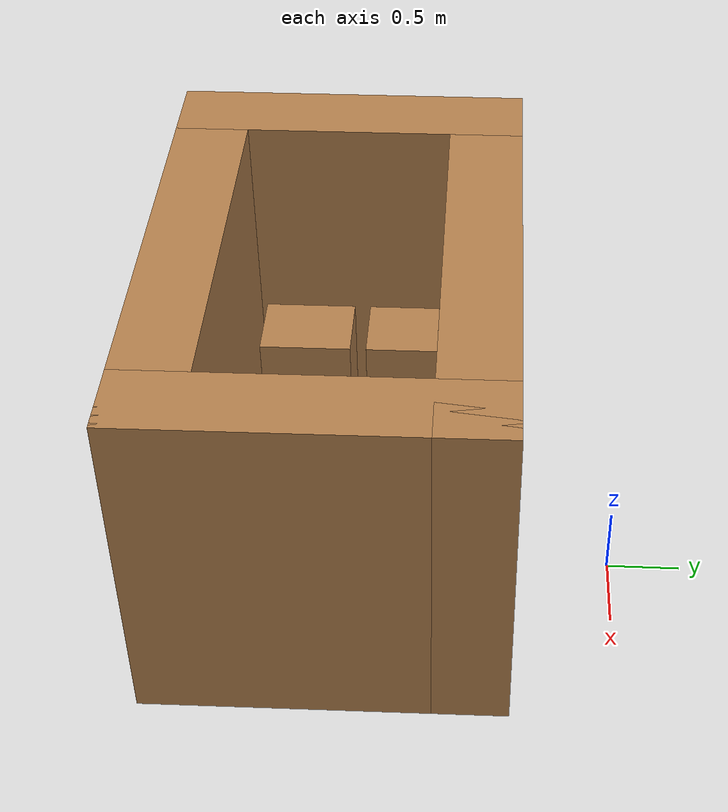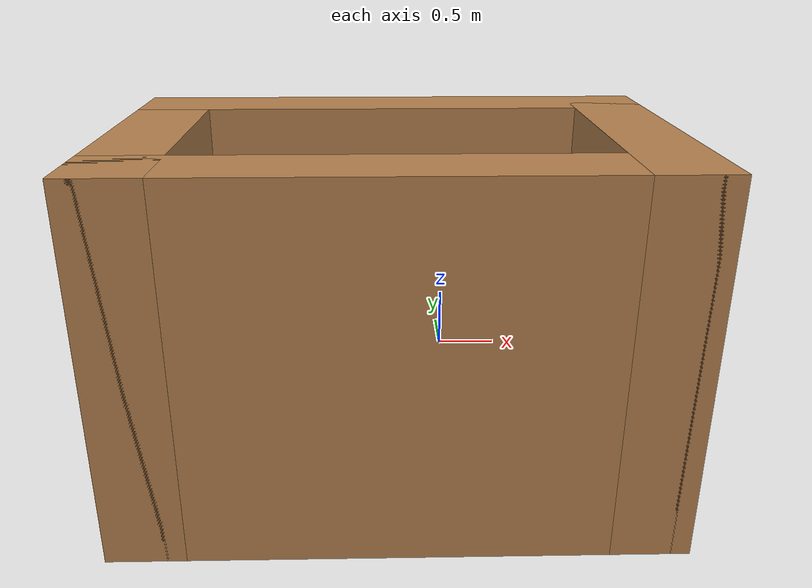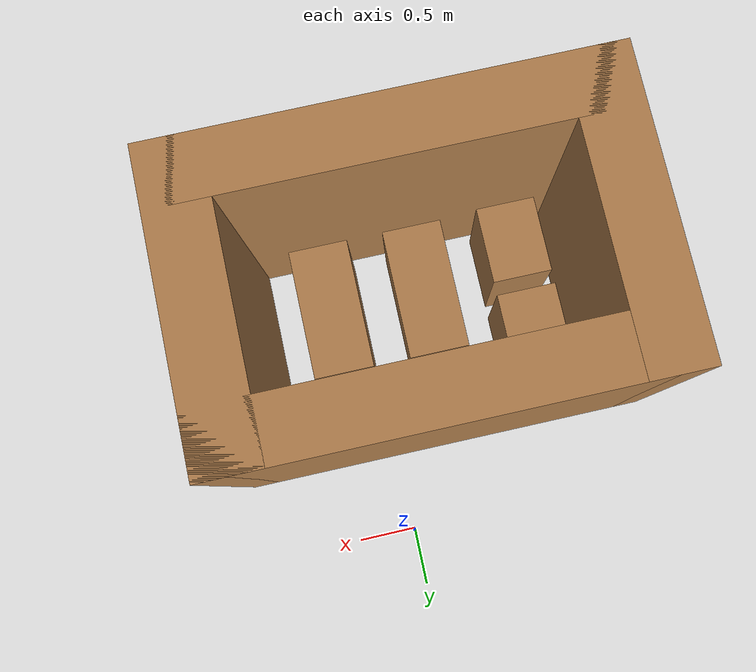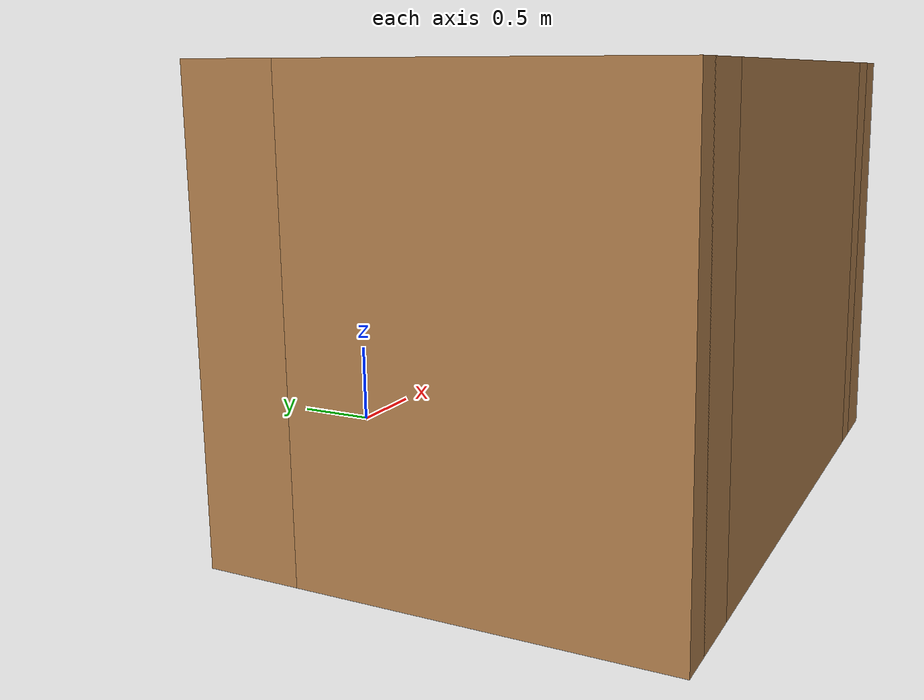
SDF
<?xml version='1.0'?>
<sdf version='1.7'>
  <model name='Clase'>
    <pose>-0.46 -1.54 0 0 -0 0</pose>
    <link name='Wall_0'>
      <collision name='Wall_0_Collision'>
        <geometry>
          <box>
            <size>3.6 0.5 2.4</size>
          </box>
        </geometry>
        <pose>0 0 1.2 0 -0 0</pose>
      </collision>
      <visual name='Wall_0_Visual'>
        <pose>0 0 1.2 0 -0 0</pose>
        <geometry>
          <box>
            <size>3.6 0.5 2.4</size>
          </box>
        </geometry>
        <material>
          <script>
            <uri>file://media/materials/scripts/gazebo.material</uri>
            <name>Gazebo/Wood</name>
          </script>
          <ambient>1 1 1 1</ambient>
        </material>
        <meta>
          <layer>0</layer>
        </meta>
      </visual>
      <pose>0 0.61 0 0 -0 0</pose>
    </link>
    <link name='Wall_10'>
      <collision name='Wall_10_Collision'>
        <geometry>
          <box>
            <size>0.65 0.5 1</size>
          </box>
        </geometry>
        <pose>0 0 0.5 0 -0 0</pose>
      </collision>
      <visual name='Wall_10_Visual'>
        <pose>0 0 0.5 0 -0 0</pose>
        <geometry>
          <box>
            <size>0.65 0.5 1</size>
          </box>
        </geometry>
        <material>
          <script>
            <uri>file://media/materials/scripts/gazebo.material</uri>
            <name>Gazebo/Wood</name>
          </script>
          <ambient>1 1 1 1</ambient>
        </material>
        <meta>
          <layer>0</layer>
        </meta>
      </visual>
      <pose>-0.89 -0.648 0 0 -0 -1.5708</pose>
    </link>
    <link name='Wall_12'>
      <collision name='Wall_12_Collision'>
        <geometry>
          <box>
            <size>1.1 0.5 1</size>
          </box>
        </geometry>
        <pose>0 0 0.5 0 -0 0</pose>
      </collision>
      <visual name='Wall_12_Visual'>
        <pose>0 0 0.5 0 -0 0</pose>
        <geometry>
          <box>
            <size>1.1 0.5 1</size>
          </box>
        </geometry>
        <material>
          <script>
            <uri>file://media/materials/scripts/gazebo.material</uri>
            <name>Gazebo/Wood</name>
          </script>
          <ambient>1 1 1 1</ambient>
        </material>
        <meta>
          <layer>0</layer>
        </meta>
      </visual>
      <pose>-0.069 -0.401 0 0 -0 -1.5708</pose>
    </link>
    <link name='Wall_14'>
      <collision name='Wall_14_Collision'>
        <geometry>
          <box>
            <size>1.09972 0.5 1</size>
          </box>
        </geometry>
        <pose>0 0 0.5 0 -0 0</pose>
      </collision>
      <visual name='Wall_14_Visual'>
        <pose>0 0 0.5 0 -0 0</pose>
        <geometry>
          <box>
            <size>1.09972 0.5 1</size>
          </box>
        </geometry>
        <material>
          <script>
            <uri>file://media/materials/scripts/gazebo.material</uri>
            <name>Gazebo/Wood</name>
          </script>
          <ambient>1 1 1 1</ambient>
        </material>
        <meta>
          <layer>0</layer>
        </meta>
      </visual>
      <pose>0.737 -0.401 0 0 -0 -1.5708</pose>
    </link>
    <link name='Wall_2'>
      <collision name='Wall_2_Collision'>
        <geometry>
          <box>
            <size>2.4 0.5 2.4</size>
          </box>
        </geometry>
        <pose>0 0 1.2 0 -0 0</pose>
      </collision>
      <visual name='Wall_2_Visual'>
        <pose>0 0 1.2 0 -0 0</pose>
        <geometry>
          <box>
            <size>2.4 0.5 2.4</size>
          </box>
        </geometry>
        <material>
          <script>
            <uri>file://media/materials/scripts/gazebo.material</uri>
            <name>Gazebo/Wood</name>
          </script>
          <ambient>1 1 1 1</ambient>
        </material>
        <meta>
          <layer>0</layer>
        </meta>
      </visual>
      <pose>-1.55 -0.34 0 0 -0 -1.5708</pose>
    </link>
    <link name='Wall_4'>
      <collision name='Wall_4_Collision'>
        <geometry>
          <box>
            <size>3.6 0.5 2.4</size>
          </box>
        </geometry>
        <pose>0 0 1.2 0 -0 0</pose>
      </collision>
      <visual name='Wall_4_Visual'>
        <pose>0 0 1.2 0 -0 0</pose>
        <geometry>
          <box>
            <size>3.6 0.5 2.4</size>
          </box>
        </geometry>
        <material>
          <script>
            <uri>file://media/materials/scripts/gazebo.material</uri>
            <name>Gazebo/Wood</name>
          </script>
          <ambient>1 1 1 1</ambient>
        </material>
        <meta>
          <layer>0</layer>
        </meta>
      </visual>
      <pose>0 -1.29 0 0 -0 0</pose>
    </link>
    <link name='Wall_6'>
      <collision name='Wall_6_Collision'>
        <geometry>
          <box>
            <size>2.4 0.5 2.4</size>
          </box>
        </geometry>
        <pose>0 0 1.2 0 -0 0</pose>
      </collision>
      <visual name='Wall_6_Visual'>
        <pose>0 0 1.2 0 -0 0</pose>
        <geometry>
          <box>
            <size>2.4 0.5 2.4</size>
          </box>
        </geometry>
        <material>
          <script>
            <uri>file://media/materials/scripts/gazebo.material</uri>
            <name>Gazebo/Wood</name>
          </script>
          <ambient>1 1 1 1</ambient>
        </material>
        <meta>
          <layer>0</layer>
        </meta>
      </visual>
      <pose>1.55 -0.34 0 0 -0 1.5708</pose>
    </link>
    <link name='Wall_8'>
      <collision name='Wall_8_Collision'>
        <geometry>
          <box>
            <size>0.51 0.5 1</size>
          </box>
        </geometry>
        <pose>0 0 0.5 0 -0 0</pose>
      </collision>
      <visual name='Wall_8_Visual'>
        <pose>0 0 0.5 0 -0 0</pose>
        <geometry>
          <box>
            <size>0.51 0.5 1</size>
          </box>
        </geometry>
        <material>
          <script>
            <uri>file://media/materials/scripts/gazebo.material</uri>
            <name>Gazebo/Wood</name>
          </script>
          <ambient>1 1 1 1</ambient>
        </material>
        <meta>
          <layer>0</layer>
        </meta>
      </visual>
      <pose>-0.89 0.046 0 0 -0 -1.5708</pose>
    </link>
    <static>1</static>
  </model>
</sdf>
